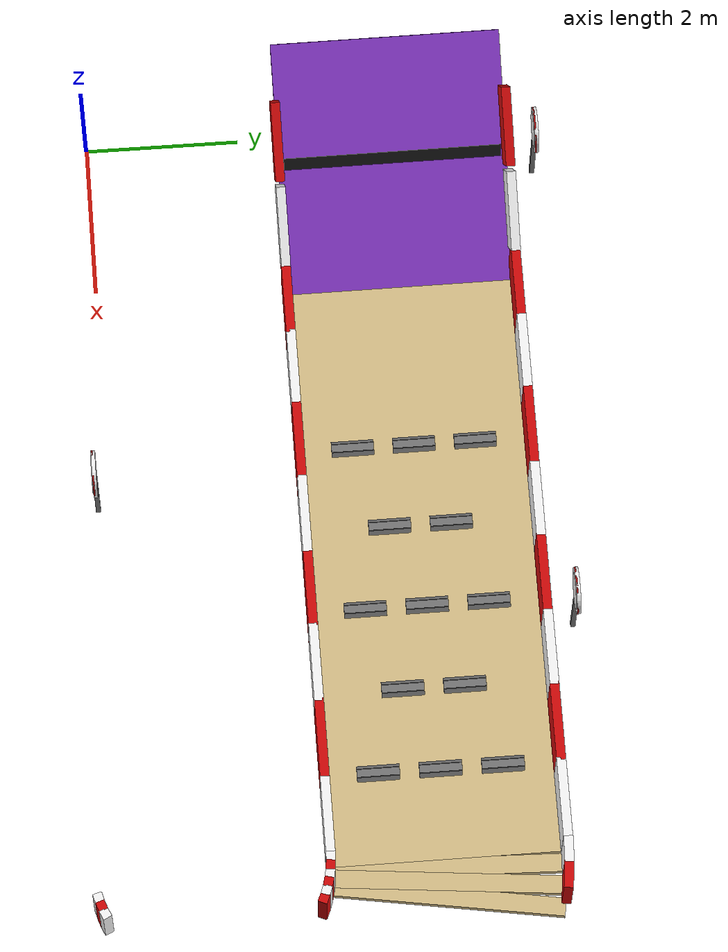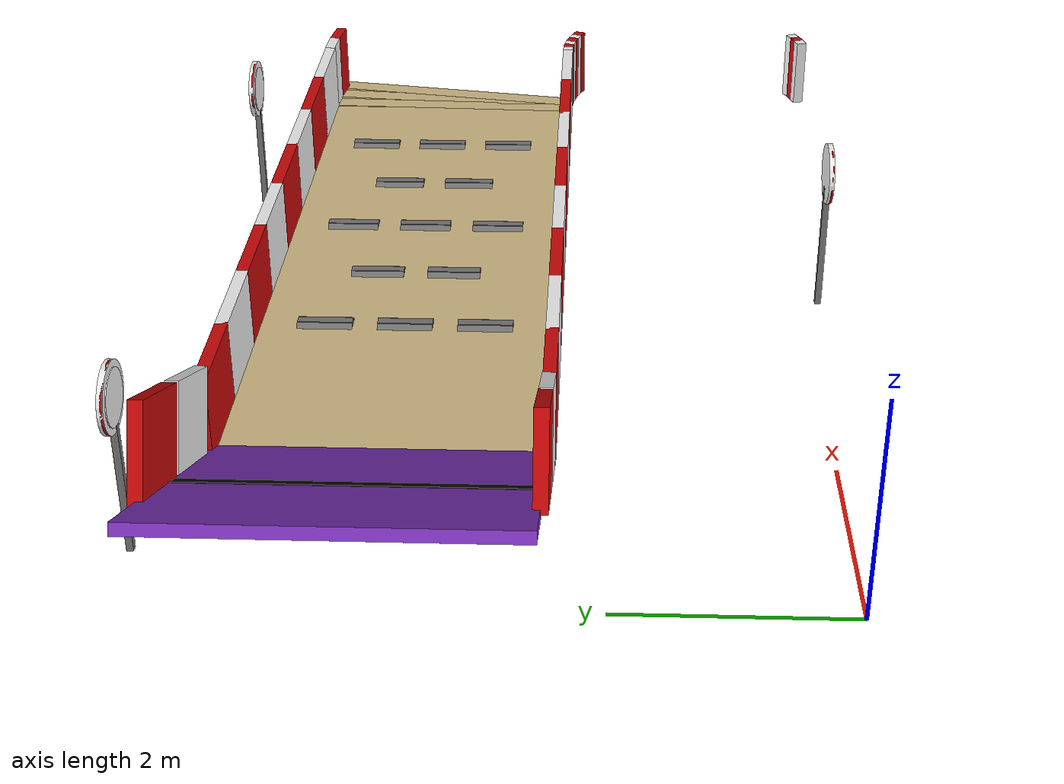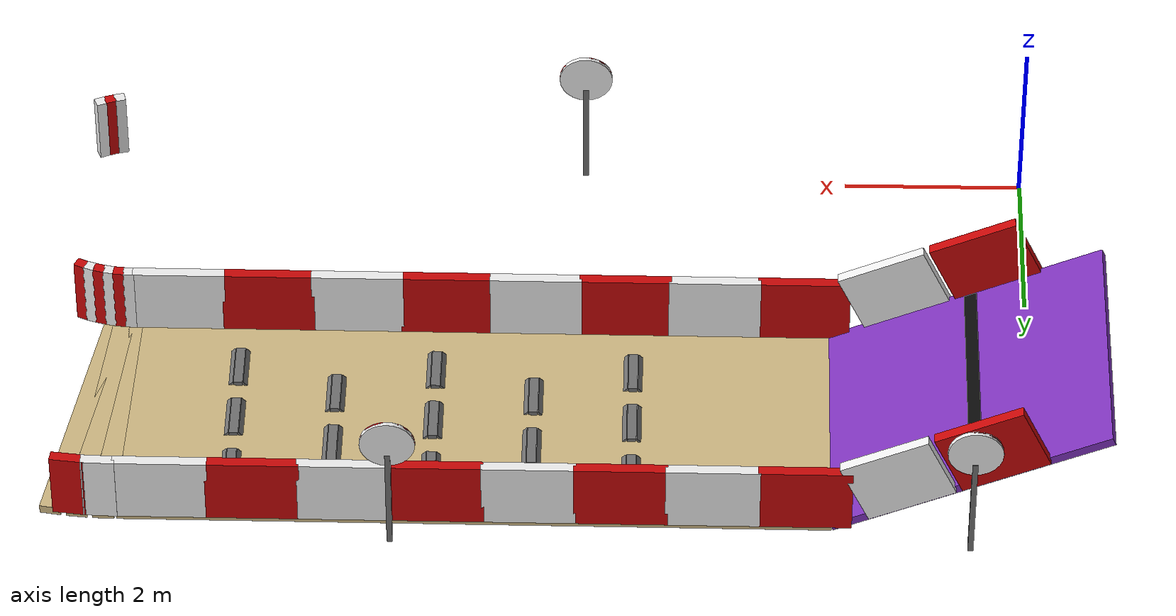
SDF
<sdf version="1.6">
 <world name="evrenos_teknofest_2026">
  <include><uri>model://sun</uri></include>
  <model name="main_course">
   <static>true</static>
   <link name="right_turn_road_45">
    <pose>10.4887 3.9599 -0.0500 0.000000 0.000000 2.977968</pose>
    <collision name="right_turn_road_45_collision">
     <geometry><box><size>0.2356 3.0000 0.1000</size></box></geometry>
    </collision>
    <visual name="right_turn_road_45_visual">
     <geometry><box><size>0.2356 3.0000 0.1000</size></box></geometry>
     <material><ambient>0.82 0.73 0.52 1</ambient><diffuse>0.82 0.73 0.52 1</diffuse></material>
    </visual>
   </link>
   <link name="right_turn_road_46">
    <pose>10.2941 3.9856 -0.0500 0.000000 0.000000 3.043418</pose>
    <collision name="right_turn_road_46_collision">
     <geometry><box><size>0.2356 3.0000 0.1000</size></box></geometry>
    </collision>
    <visual name="right_turn_road_46_visual">
     <geometry><box><size>0.2356 3.0000 0.1000</size></box></geometry>
     <material><ambient>0.82 0.73 0.52 1</ambient><diffuse>0.82 0.73 0.52 1</diffuse></material>
    </visual>
   </link>
   <link name="right_turn_road_47">
    <pose>10.0982 3.9984 -0.0500 0.000000 0.000000 3.108868</pose>
    <collision name="right_turn_road_47_collision">
     <geometry><box><size>0.2356 3.0000 0.1000</size></box></geometry>
    </collision>
    <visual name="right_turn_road_47_visual">
     <geometry><box><size>0.2356 3.0000 0.1000</size></box></geometry>
     <material><ambient>0.82 0.73 0.52 1</ambient><diffuse>0.82 0.73 0.52 1</diffuse></material>
    </visual>
   </link>
   <link name="top_rough_base_0">
    <pose>6.1000 4.0000 -0.0500 0.000000 0.000000 0.000000</pose>
    <collision name="top_rough_base_0_collision">
     <geometry><box><size>7.8000 3.0000 0.1000</size></box></geometry>
    </collision>
    <visual name="top_rough_base_0_visual">
     <geometry><box><size>7.8000 3.0000 0.1000</size></box></geometry>
     <material><ambient>0.82 0.73 0.52 1</ambient><diffuse>0.82 0.73 0.52 1</diffuse></material>
    </visual>
   </link>
   <link name="bump_0_up">
    <pose>8.7250 3.2000 0.0125 0.000000 -0.785398 0.000000</pose>
    <collision name="bump_0_up_collision">
     <geometry><box><size>0.0707 0.5500 0.0250</size></box></geometry>
    </collision>
    <visual name="bump_0_up_visual">
     <geometry><box><size>0.0707 0.5500 0.0250</size></box></geometry>
     <material><ambient>0.45 0.45 0.45 1</ambient><diffuse>0.45 0.45 0.45 1</diffuse></material>
    </visual>
   </link>
   <link name="bump_0_top">
    <pose>8.8000 3.2000 0.0250 0.000000 0.000000 0.000000</pose>
    <collision name="bump_0_top_collision">
     <geometry><box><size>0.1000 0.5500 0.0500</size></box></geometry>
    </collision>
    <visual name="bump_0_top_visual">
     <geometry><box><size>0.1000 0.5500 0.0500</size></box></geometry>
     <material><ambient>0.45 0.45 0.45 1</ambient><diffuse>0.45 0.45 0.45 1</diffuse></material>
    </visual>
   </link>
   <link name="bump_0_down">
    <pose>8.8750 3.2000 0.0125 0.000000 0.785398 0.000000</pose>
    <collision name="bump_0_down_collision">
     <geometry><box><size>0.0707 0.5500 0.0250</size></box></geometry>
    </collision>
    <visual name="bump_0_down_visual">
     <geometry><box><size>0.0707 0.5500 0.0250</size></box></geometry>
     <material><ambient>0.45 0.45 0.45 1</ambient><diffuse>0.45 0.45 0.45 1</diffuse></material>
    </visual>
   </link>
   <link name="bump_1_up">
    <pose>8.7250 4.0000 0.0125 0.000000 -0.785398 0.000000</pose>
    <collision name="bump_1_up_collision">
     <geometry><box><size>0.0707 0.5500 0.0250</size></box></geometry>
    </collision>
    <visual name="bump_1_up_visual">
     <geometry><box><size>0.0707 0.5500 0.0250</size></box></geometry>
     <material><ambient>0.45 0.45 0.45 1</ambient><diffuse>0.45 0.45 0.45 1</diffuse></material>
    </visual>
   </link>
   <link name="bump_1_top">
    <pose>8.8000 4.0000 0.0250 0.000000 0.000000 0.000000</pose>
    <collision name="bump_1_top_collision">
     <geometry><box><size>0.1000 0.5500 0.0500</size></box></geometry>
    </collision>
    <visual name="bump_1_top_visual">
     <geometry><box><size>0.1000 0.5500 0.0500</size></box></geometry>
     <material><ambient>0.45 0.45 0.45 1</ambient><diffuse>0.45 0.45 0.45 1</diffuse></material>
    </visual>
   </link>
   <link name="bump_1_down">
    <pose>8.8750 4.0000 0.0125 0.000000 0.785398 0.000000</pose>
    <collision name="bump_1_down_collision">
     <geometry><box><size>0.0707 0.5500 0.0250</size></box></geometry>
    </collision>
    <visual name="bump_1_down_visual">
     <geometry><box><size>0.0707 0.5500 0.0250</size></box></geometry>
     <material><ambient>0.45 0.45 0.45 1</ambient><diffuse>0.45 0.45 0.45 1</diffuse></material>
    </visual>
   </link>
   <link name="bump_2_up">
    <pose>8.7250 4.8000 0.0125 0.000000 -0.785398 0.000000</pose>
    <collision name="bump_2_up_collision">
     <geometry><box><size>0.0707 0.5500 0.0250</size></box></geometry>
    </collision>
    <visual name="bump_2_up_visual">
     <geometry><box><size>0.0707 0.5500 0.0250</size></box></geometry>
     <material><ambient>0.45 0.45 0.45 1</ambient><diffuse>0.45 0.45 0.45 1</diffuse></material>
    </visual>
   </link>
   <link name="bump_2_top">
    <pose>8.8000 4.8000 0.0250 0.000000 0.000000 0.000000</pose>
    <collision name="bump_2_top_collision">
     <geometry><box><size>0.1000 0.5500 0.0500</size></box></geometry>
    </collision>
    <visual name="bump_2_top_visual">
     <geometry><box><size>0.1000 0.5500 0.0500</size></box></geometry>
     <material><ambient>0.45 0.45 0.45 1</ambient><diffuse>0.45 0.45 0.45 1</diffuse></material>
    </visual>
   </link>
   <link name="bump_2_down">
    <pose>8.8750 4.8000 0.0125 0.000000 0.785398 0.000000</pose>
    <collision name="bump_2_down_collision">
     <geometry><box><size>0.0707 0.5500 0.0250</size></box></geometry>
    </collision>
    <visual name="bump_2_down_visual">
     <geometry><box><size>0.0707 0.5500 0.0250</size></box></geometry>
     <material><ambient>0.45 0.45 0.45 1</ambient><diffuse>0.45 0.45 0.45 1</diffuse></material>
    </visual>
   </link>
   <link name="bump_3_up">
    <pose>7.6250 3.6000 0.0125 0.000000 -0.785398 0.000000</pose>
    <collision name="bump_3_up_collision">
     <geometry><box><size>0.0707 0.5500 0.0250</size></box></geometry>
    </collision>
    <visual name="bump_3_up_visual">
     <geometry><box><size>0.0707 0.5500 0.0250</size></box></geometry>
     <material><ambient>0.45 0.45 0.45 1</ambient><diffuse>0.45 0.45 0.45 1</diffuse></material>
    </visual>
   </link>
   <link name="bump_3_top">
    <pose>7.7000 3.6000 0.0250 0.000000 0.000000 0.000000</pose>
    <collision name="bump_3_top_collision">
     <geometry><box><size>0.1000 0.5500 0.0500</size></box></geometry>
    </collision>
    <visual name="bump_3_top_visual">
     <geometry><box><size>0.1000 0.5500 0.0500</size></box></geometry>
     <material><ambient>0.45 0.45 0.45 1</ambient><diffuse>0.45 0.45 0.45 1</diffuse></material>
    </visual>
   </link>
   <link name="bump_3_down">
    <pose>7.7750 3.6000 0.0125 0.000000 0.785398 0.000000</pose>
    <collision name="bump_3_down_collision">
     <geometry><box><size>0.0707 0.5500 0.0250</size></box></geometry>
    </collision>
    <visual name="bump_3_down_visual">
     <geometry><box><size>0.0707 0.5500 0.0250</size></box></geometry>
     <material><ambient>0.45 0.45 0.45 1</ambient><diffuse>0.45 0.45 0.45 1</diffuse></material>
    </visual>
   </link>
   <link name="bump_4_up">
    <pose>7.6250 4.4000 0.0125 0.000000 -0.785398 0.000000</pose>
    <collision name="bump_4_up_collision">
     <geometry><box><size>0.0707 0.5500 0.0250</size></box></geometry>
    </collision>
    <visual name="bump_4_up_visual">
     <geometry><box><size>0.0707 0.5500 0.0250</size></box></geometry>
     <material><ambient>0.45 0.45 0.45 1</ambient><diffuse>0.45 0.45 0.45 1</diffuse></material>
    </visual>
   </link>
   <link name="bump_4_top">
    <pose>7.7000 4.4000 0.0250 0.000000 0.000000 0.000000</pose>
    <collision name="bump_4_top_collision">
     <geometry><box><size>0.1000 0.5500 0.0500</size></box></geometry>
    </collision>
    <visual name="bump_4_top_visual">
     <geometry><box><size>0.1000 0.5500 0.0500</size></box></geometry>
     <material><ambient>0.45 0.45 0.45 1</ambient><diffuse>0.45 0.45 0.45 1</diffuse></material>
    </visual>
   </link>
   <link name="bump_4_down">
    <pose>7.7750 4.4000 0.0125 0.000000 0.785398 0.000000</pose>
    <collision name="bump_4_down_collision">
     <geometry><box><size>0.0707 0.5500 0.0250</size></box></geometry>
    </collision>
    <visual name="bump_4_down_visual">
     <geometry><box><size>0.0707 0.5500 0.0250</size></box></geometry>
     <material><ambient>0.45 0.45 0.45 1</ambient><diffuse>0.45 0.45 0.45 1</diffuse></material>
    </visual>
   </link>
   <link name="bump_5_up">
    <pose>6.5250 3.2000 0.0125 0.000000 -0.785398 0.000000</pose>
    <collision name="bump_5_up_collision">
     <geometry><box><size>0.0707 0.5500 0.0250</size></box></geometry>
    </collision>
    <visual name="bump_5_up_visual">
     <geometry><box><size>0.0707 0.5500 0.0250</size></box></geometry>
     <material><ambient>0.45 0.45 0.45 1</ambient><diffuse>0.45 0.45 0.45 1</diffuse></material>
    </visual>
   </link>
   <link name="bump_5_top">
    <pose>6.6000 3.2000 0.0250 0.000000 0.000000 0.000000</pose>
    <collision name="bump_5_top_collision">
     <geometry><box><size>0.1000 0.5500 0.0500</size></box></geometry>
    </collision>
    <visual name="bump_5_top_visual">
     <geometry><box><size>0.1000 0.5500 0.0500</size></box></geometry>
     <material><ambient>0.45 0.45 0.45 1</ambient><diffuse>0.45 0.45 0.45 1</diffuse></material>
    </visual>
   </link>
   <link name="bump_5_down">
    <pose>6.6750 3.2000 0.0125 0.000000 0.785398 0.000000</pose>
    <collision name="bump_5_down_collision">
     <geometry><box><size>0.0707 0.5500 0.0250</size></box></geometry>
    </collision>
    <visual name="bump_5_down_visual">
     <geometry><box><size>0.0707 0.5500 0.0250</size></box></geometry>
     <material><ambient>0.45 0.45 0.45 1</ambient><diffuse>0.45 0.45 0.45 1</diffuse></material>
    </visual>
   </link>
   <link name="bump_6_up">
    <pose>6.5250 4.0000 0.0125 0.000000 -0.785398 0.000000</pose>
    <collision name="bump_6_up_collision">
     <geometry><box><size>0.0707 0.5500 0.0250</size></box></geometry>
    </collision>
    <visual name="bump_6_up_visual">
     <geometry><box><size>0.0707 0.5500 0.0250</size></box></geometry>
     <material><ambient>0.45 0.45 0.45 1</ambient><diffuse>0.45 0.45 0.45 1</diffuse></material>
    </visual>
   </link>
   <link name="bump_6_top">
    <pose>6.6000 4.0000 0.0250 0.000000 0.000000 0.000000</pose>
    <collision name="bump_6_top_collision">
     <geometry><box><size>0.1000 0.5500 0.0500</size></box></geometry>
    </collision>
    <visual name="bump_6_top_visual">
     <geometry><box><size>0.1000 0.5500 0.0500</size></box></geometry>
     <material><ambient>0.45 0.45 0.45 1</ambient><diffuse>0.45 0.45 0.45 1</diffuse></material>
    </visual>
   </link>
   <link name="bump_6_down">
    <pose>6.6750 4.0000 0.0125 0.000000 0.785398 0.000000</pose>
    <collision name="bump_6_down_collision">
     <geometry><box><size>0.0707 0.5500 0.0250</size></box></geometry>
    </collision>
    <visual name="bump_6_down_visual">
     <geometry><box><size>0.0707 0.5500 0.0250</size></box></geometry>
     <material><ambient>0.45 0.45 0.45 1</ambient><diffuse>0.45 0.45 0.45 1</diffuse></material>
    </visual>
   </link>
   <link name="bump_7_up">
    <pose>6.5250 4.8000 0.0125 0.000000 -0.785398 0.000000</pose>
    <collision name="bump_7_up_collision">
     <geometry><box><size>0.0707 0.5500 0.0250</size></box></geometry>
    </collision>
    <visual name="bump_7_up_visual">
     <geometry><box><size>0.0707 0.5500 0.0250</size></box></geometry>
     <material><ambient>0.45 0.45 0.45 1</ambient><diffuse>0.45 0.45 0.45 1</diffuse></material>
    </visual>
   </link>
   <link name="bump_7_top">
    <pose>6.6000 4.8000 0.0250 0.000000 0.000000 0.000000</pose>
    <collision name="bump_7_top_collision">
     <geometry><box><size>0.1000 0.5500 0.0500</size></box></geometry>
    </collision>
    <visual name="bump_7_top_visual">
     <geometry><box><size>0.1000 0.5500 0.0500</size></box></geometry>
     <material><ambient>0.45 0.45 0.45 1</ambient><diffuse>0.45 0.45 0.45 1</diffuse></material>
    </visual>
   </link>
   <link name="bump_7_down">
    <pose>6.6750 4.8000 0.0125 0.000000 0.785398 0.000000</pose>
    <collision name="bump_7_down_collision">
     <geometry><box><size>0.0707 0.5500 0.0250</size></box></geometry>
    </collision>
    <visual name="bump_7_down_visual">
     <geometry><box><size>0.0707 0.5500 0.0250</size></box></geometry>
     <material><ambient>0.45 0.45 0.45 1</ambient><diffuse>0.45 0.45 0.45 1</diffuse></material>
    </visual>
   </link>
   <link name="bump_8_up">
    <pose>5.4250 3.6000 0.0125 0.000000 -0.785398 0.000000</pose>
    <collision name="bump_8_up_collision">
     <geometry><box><size>0.0707 0.5500 0.0250</size></box></geometry>
    </collision>
    <visual name="bump_8_up_visual">
     <geometry><box><size>0.0707 0.5500 0.0250</size></box></geometry>
     <material><ambient>0.45 0.45 0.45 1</ambient><diffuse>0.45 0.45 0.45 1</diffuse></material>
    </visual>
   </link>
   <link name="bump_8_top">
    <pose>5.5000 3.6000 0.0250 0.000000 0.000000 0.000000</pose>
    <collision name="bump_8_top_collision">
     <geometry><box><size>0.1000 0.5500 0.0500</size></box></geometry>
    </collision>
    <visual name="bump_8_top_visual">
     <geometry><box><size>0.1000 0.5500 0.0500</size></box></geometry>
     <material><ambient>0.45 0.45 0.45 1</ambient><diffuse>0.45 0.45 0.45 1</diffuse></material>
    </visual>
   </link>
   <link name="bump_8_down">
    <pose>5.5750 3.6000 0.0125 0.000000 0.785398 0.000000</pose>
    <collision name="bump_8_down_collision">
     <geometry><box><size>0.0707 0.5500 0.0250</size></box></geometry>
    </collision>
    <visual name="bump_8_down_visual">
     <geometry><box><size>0.0707 0.5500 0.0250</size></box></geometry>
     <material><ambient>0.45 0.45 0.45 1</ambient><diffuse>0.45 0.45 0.45 1</diffuse></material>
    </visual>
   </link>
   <link name="bump_9_up">
    <pose>5.4250 4.4000 0.0125 0.000000 -0.785398 0.000000</pose>
    <collision name="bump_9_up_collision">
     <geometry><box><size>0.0707 0.5500 0.0250</size></box></geometry>
    </collision>
    <visual name="bump_9_up_visual">
     <geometry><box><size>0.0707 0.5500 0.0250</size></box></geometry>
     <material><ambient>0.45 0.45 0.45 1</ambient><diffuse>0.45 0.45 0.45 1</diffuse></material>
    </visual>
   </link>
   <link name="bump_9_top">
    <pose>5.5000 4.4000 0.0250 0.000000 0.000000 0.000000</pose>
    <collision name="bump_9_top_collision">
     <geometry><box><size>0.1000 0.5500 0.0500</size></box></geometry>
    </collision>
    <visual name="bump_9_top_visual">
     <geometry><box><size>0.1000 0.5500 0.0500</size></box></geometry>
     <material><ambient>0.45 0.45 0.45 1</ambient><diffuse>0.45 0.45 0.45 1</diffuse></material>
    </visual>
   </link>
   <link name="bump_9_down">
    <pose>5.5750 4.4000 0.0125 0.000000 0.785398 0.000000</pose>
    <collision name="bump_9_down_collision">
     <geometry><box><size>0.0707 0.5500 0.0250</size></box></geometry>
    </collision>
    <visual name="bump_9_down_visual">
     <geometry><box><size>0.0707 0.5500 0.0250</size></box></geometry>
     <material><ambient>0.45 0.45 0.45 1</ambient><diffuse>0.45 0.45 0.45 1</diffuse></material>
    </visual>
   </link>
   <link name="bump_10_up">
    <pose>4.3250 3.2000 0.0125 0.000000 -0.785398 0.000000</pose>
    <collision name="bump_10_up_collision">
     <geometry><box><size>0.0707 0.5500 0.0250</size></box></geometry>
    </collision>
    <visual name="bump_10_up_visual">
     <geometry><box><size>0.0707 0.5500 0.0250</size></box></geometry>
     <material><ambient>0.45 0.45 0.45 1</ambient><diffuse>0.45 0.45 0.45 1</diffuse></material>
    </visual>
   </link>
   <link name="bump_10_top">
    <pose>4.4000 3.2000 0.0250 0.000000 0.000000 0.000000</pose>
    <collision name="bump_10_top_collision">
     <geometry><box><size>0.1000 0.5500 0.0500</size></box></geometry>
    </collision>
    <visual name="bump_10_top_visual">
     <geometry><box><size>0.1000 0.5500 0.0500</size></box></geometry>
     <material><ambient>0.45 0.45 0.45 1</ambient><diffuse>0.45 0.45 0.45 1</diffuse></material>
    </visual>
   </link>
   <link name="bump_10_down">
    <pose>4.4750 3.2000 0.0125 0.000000 0.785398 0.000000</pose>
    <collision name="bump_10_down_collision">
     <geometry><box><size>0.0707 0.5500 0.0250</size></box></geometry>
    </collision>
    <visual name="bump_10_down_visual">
     <geometry><box><size>0.0707 0.5500 0.0250</size></box></geometry>
     <material><ambient>0.45 0.45 0.45 1</ambient><diffuse>0.45 0.45 0.45 1</diffuse></material>
    </visual>
   </link>
   <link name="bump_11_up">
    <pose>4.3250 4.0000 0.0125 0.000000 -0.785398 0.000000</pose>
    <collision name="bump_11_up_collision">
     <geometry><box><size>0.0707 0.5500 0.0250</size></box></geometry>
    </collision>
    <visual name="bump_11_up_visual">
     <geometry><box><size>0.0707 0.5500 0.0250</size></box></geometry>
     <material><ambient>0.45 0.45 0.45 1</ambient><diffuse>0.45 0.45 0.45 1</diffuse></material>
    </visual>
   </link>
   <link name="bump_11_top">
    <pose>4.4000 4.0000 0.0250 0.000000 0.000000 0.000000</pose>
    <collision name="bump_11_top_collision">
     <geometry><box><size>0.1000 0.5500 0.0500</size></box></geometry>
    </collision>
    <visual name="bump_11_top_visual">
     <geometry><box><size>0.1000 0.5500 0.0500</size></box></geometry>
     <material><ambient>0.45 0.45 0.45 1</ambient><diffuse>0.45 0.45 0.45 1</diffuse></material>
    </visual>
   </link>
   <link name="bump_11_down">
    <pose>4.4750 4.0000 0.0125 0.000000 0.785398 0.000000</pose>
    <collision name="bump_11_down_collision">
     <geometry><box><size>0.0707 0.5500 0.0250</size></box></geometry>
    </collision>
    <visual name="bump_11_down_visual">
     <geometry><box><size>0.0707 0.5500 0.0250</size></box></geometry>
     <material><ambient>0.45 0.45 0.45 1</ambient><diffuse>0.45 0.45 0.45 1</diffuse></material>
    </visual>
   </link>
   <link name="bump_12_up">
    <pose>4.3250 4.8000 0.0125 0.000000 -0.785398 0.000000</pose>
    <collision name="bump_12_up_collision">
     <geometry><box><size>0.0707 0.5500 0.0250</size></box></geometry>
    </collision>
    <visual name="bump_12_up_visual">
     <geometry><box><size>0.0707 0.5500 0.0250</size></box></geometry>
     <material><ambient>0.45 0.45 0.45 1</ambient><diffuse>0.45 0.45 0.45 1</diffuse></material>
    </visual>
   </link>
   <link name="bump_12_top">
    <pose>4.4000 4.8000 0.0250 0.000000 0.000000 0.000000</pose>
    <collision name="bump_12_top_collision">
     <geometry><box><size>0.1000 0.5500 0.0500</size></box></geometry>
    </collision>
    <visual name="bump_12_top_visual">
     <geometry><box><size>0.1000 0.5500 0.0500</size></box></geometry>
     <material><ambient>0.45 0.45 0.45 1</ambient><diffuse>0.45 0.45 0.45 1</diffuse></material>
    </visual>
   </link>
   <link name="bump_12_down">
    <pose>4.4750 4.8000 0.0125 0.000000 0.785398 0.000000</pose>
    <collision name="bump_12_down_collision">
     <geometry><box><size>0.0707 0.5500 0.0250</size></box></geometry>
    </collision>
    <visual name="bump_12_down_visual">
     <geometry><box><size>0.0707 0.5500 0.0250</size></box></geometry>
     <material><ambient>0.45 0.45 0.45 1</ambient><diffuse>0.45 0.45 0.45 1</diffuse></material>
    </visual>
   </link>
   <link name="steep_up">
    <pose>0.7000 4.0000 0.6336 0.000000 0.427606 0.000000</pose>
    <collision name="steep_up_collision">
     <geometry><box><size>3.2968 3.0000 0.1000</size></box></geometry>
    </collision>
    <visual name="steep_up_visual">
     <geometry><box><size>3.2968 3.0000 0.1000</size></box></geometry>
     <material><ambient>0.5 0.2 0.75 1</ambient><diffuse>0.5 0.2 0.75 1</diffuse></material>
    </visual>
   </link>
   <link name="stop_strip_up">
    <pose>0.6500 4.0000 0.7036 0.000000 0.427606 0.000000</pose>
    <visual name="stop_strip_up_visual">
     <geometry><box><size>0.1500 2.8500 0.0300</size></box></geometry>
     <material><ambient>0.04 0.04 0.04 1</ambient><diffuse>0.04 0.04 0.04 1</diffuse></material>
    </visual>
   </link>
   <link name="right_turn_bar_0_3">
    <pose>10.3882 -0.4489 0.4000 0.000000 0.000000 0.261799</pose>
    <collision name="right_turn_bar_0_3_collision">
     <geometry><box><size>0.1234 0.1200 0.8000</size></box></geometry>
    </collision>
    <visual name="right_turn_bar_0_3_visual">
     <geometry><box><size>0.1234 0.1200 0.8000</size></box></geometry>
     <material><ambient>0.95 0.95 0.95 1</ambient><diffuse>0.95 0.95 0.95 1</diffuse></material>
    </visual>
   </link>
   <link name="right_turn_bar_0_4">
    <pose>10.4954 -0.4158 0.4000 0.000000 0.000000 0.336599</pose>
    <collision name="right_turn_bar_0_4_collision">
     <geometry><box><size>0.1234 0.1200 0.8000</size></box></geometry>
    </collision>
    <visual name="right_turn_bar_0_4_visual">
     <geometry><box><size>0.1234 0.1200 0.8000</size></box></geometry>
     <material><ambient>0.8 0.03 0.03 1</ambient><diffuse>0.8 0.03 0.03 1</diffuse></material>
    </visual>
   </link>
   <link name="right_turn_bar_0_5">
    <pose>10.5998 -0.3748 0.4000 0.000000 0.000000 0.411399</pose>
    <collision name="right_turn_bar_0_5_collision">
     <geometry><box><size>0.1234 0.1200 0.8000</size></box></geometry>
    </collision>
    <visual name="right_turn_bar_0_5_visual">
     <geometry><box><size>0.1234 0.1200 0.8000</size></box></geometry>
     <material><ambient>0.95 0.95 0.95 1</ambient><diffuse>0.95 0.95 0.95 1</diffuse></material>
    </visual>
   </link>
   <link name="right_turn_bar_0_36">
    <pose>10.5998 2.3748 0.4000 0.000000 0.000000 2.730194</pose>
    <collision name="right_turn_bar_0_36_collision">
     <geometry><box><size>0.1234 0.1200 0.8000</size></box></geometry>
    </collision>
    <visual name="right_turn_bar_0_36_visual">
     <geometry><box><size>0.1234 0.1200 0.8000</size></box></geometry>
     <material><ambient>0.8 0.03 0.03 1</ambient><diffuse>0.8 0.03 0.03 1</diffuse></material>
    </visual>
   </link>
   <link name="right_turn_bar_0_37">
    <pose>10.4954 2.4158 0.4000 0.000000 0.000000 2.804993</pose>
    <collision name="right_turn_bar_0_37_collision">
     <geometry><box><size>0.1234 0.1200 0.8000</size></box></geometry>
    </collision>
    <visual name="right_turn_bar_0_37_visual">
     <geometry><box><size>0.1234 0.1200 0.8000</size></box></geometry>
     <material><ambient>0.95 0.95 0.95 1</ambient><diffuse>0.95 0.95 0.95 1</diffuse></material>
    </visual>
   </link>
   <link name="right_turn_bar_0_38">
    <pose>10.3882 2.4489 0.4000 0.000000 0.000000 2.879793</pose>
    <collision name="right_turn_bar_0_38_collision">
     <geometry><box><size>0.1234 0.1200 0.8000</size></box></geometry>
    </collision>
    <visual name="right_turn_bar_0_38_visual">
     <geometry><box><size>0.1234 0.1200 0.8000</size></box></geometry>
     <material><ambient>0.8 0.03 0.03 1</ambient><diffuse>0.8 0.03 0.03 1</diffuse></material>
    </visual>
   </link>
   <link name="right_turn_bar_0_39">
    <pose>10.2789 2.4738 0.4000 0.000000 0.000000 2.954593</pose>
    <collision name="right_turn_bar_0_39_collision">
     <geometry><box><size>0.1234 0.1200 0.8000</size></box></geometry>
    </collision>
    <visual name="right_turn_bar_0_39_visual">
     <geometry><box><size>0.1234 0.1200 0.8000</size></box></geometry>
     <material><ambient>0.95 0.95 0.95 1</ambient><diffuse>0.95 0.95 0.95 1</diffuse></material>
    </visual>
   </link>
   <link name="right_turn_bar_0_40">
    <pose>10.1679 2.4906 0.4000 0.000000 0.000000 3.029393</pose>
    <collision name="right_turn_bar_0_40_collision">
     <geometry><box><size>0.1234 0.1200 0.8000</size></box></geometry>
    </collision>
    <visual name="right_turn_bar_0_40_visual">
     <geometry><box><size>0.1234 0.1200 0.8000</size></box></geometry>
     <material><ambient>0.8 0.03 0.03 1</ambient><diffuse>0.8 0.03 0.03 1</diffuse></material>
    </visual>
   </link>
   <link name="right_turn_bar_0_41">
    <pose>10.0561 2.4990 0.4000 0.000000 0.000000 3.104193</pose>
    <collision name="right_turn_bar_0_41_collision">
     <geometry><box><size>0.1234 0.1200 0.8000</size></box></geometry>
    </collision>
    <visual name="right_turn_bar_0_41_visual">
     <geometry><box><size>0.1234 0.1200 0.8000</size></box></geometry>
     <material><ambient>0.95 0.95 0.95 1</ambient><diffuse>0.95 0.95 0.95 1</diffuse></material>
    </visual>
   </link>
   <link name="right_turn_bar_1_40">
    <pose>10.5038 5.4717 0.4000 0.000000 0.000000 3.029393</pose>
    <collision name="right_turn_bar_1_40_collision">
     <geometry><box><size>0.3703 0.1200 0.8000</size></box></geometry>
    </collision>
    <visual name="right_turn_bar_1_40_visual">
     <geometry><box><size>0.3703 0.1200 0.8000</size></box></geometry>
     <material><ambient>0.8 0.03 0.03 1</ambient><diffuse>0.8 0.03 0.03 1</diffuse></material>
    </visual>
   </link>
   <link name="right_turn_bar_1_41">
    <pose>10.1683 5.4969 0.4000 0.000000 0.000000 3.104193</pose>
    <collision name="right_turn_bar_1_41_collision">
     <geometry><box><size>0.3703 0.1200 0.8000</size></box></geometry>
    </collision>
    <visual name="right_turn_bar_1_41_visual">
     <geometry><box><size>0.3703 0.1200 0.8000</size></box></geometry>
     <material><ambient>0.95 0.95 0.95 1</ambient><diffuse>0.95 0.95 0.95 1</diffuse></material>
    </visual>
   </link>
   <link name="top_bar_-1_10">
    <pose>0.5000 2.5000 1.1747 0.000000 0.427606 0.000000</pose>
    <collision name="top_bar_-1_10_collision">
     <geometry><box><size>1.0300 0.1200 0.8000</size></box></geometry>
    </collision>
    <visual name="top_bar_-1_10_visual">
     <geometry><box><size>1.0300 0.1200 0.8000</size></box></geometry>
     <material><ambient>0.8 0.03 0.03 1</ambient><diffuse>0.8 0.03 0.03 1</diffuse></material>
    </visual>
   </link>
   <link name="top_bar_-1_11">
    <pose>1.5000 2.5000 0.7190 0.000000 0.427606 0.000000</pose>
    <collision name="top_bar_-1_11_collision">
     <geometry><box><size>1.0300 0.1200 0.8000</size></box></geometry>
    </collision>
    <visual name="top_bar_-1_11_visual">
     <geometry><box><size>1.0300 0.1200 0.8000</size></box></geometry>
     <material><ambient>0.95 0.95 0.95 1</ambient><diffuse>0.95 0.95 0.95 1</diffuse></material>
    </visual>
   </link>
   <link name="top_bar_-1_12">
    <pose>2.5000 2.5000 0.4000 0.000000 0.000000 0.000000</pose>
    <collision name="top_bar_-1_12_collision">
     <geometry><box><size>1.0300 0.1200 0.8000</size></box></geometry>
    </collision>
    <visual name="top_bar_-1_12_visual">
     <geometry><box><size>1.0300 0.1200 0.8000</size></box></geometry>
     <material><ambient>0.8 0.03 0.03 1</ambient><diffuse>0.8 0.03 0.03 1</diffuse></material>
    </visual>
   </link>
   <link name="top_bar_-1_13">
    <pose>3.5000 2.5000 0.4000 0.000000 0.000000 0.000000</pose>
    <collision name="top_bar_-1_13_collision">
     <geometry><box><size>1.0300 0.1200 0.8000</size></box></geometry>
    </collision>
    <visual name="top_bar_-1_13_visual">
     <geometry><box><size>1.0300 0.1200 0.8000</size></box></geometry>
     <material><ambient>0.95 0.95 0.95 1</ambient><diffuse>0.95 0.95 0.95 1</diffuse></material>
    </visual>
   </link>
   <link name="top_bar_-1_14">
    <pose>4.5000 2.5000 0.4000 0.000000 0.000000 0.000000</pose>
    <collision name="top_bar_-1_14_collision">
     <geometry><box><size>1.0300 0.1200 0.8000</size></box></geometry>
    </collision>
    <visual name="top_bar_-1_14_visual">
     <geometry><box><size>1.0300 0.1200 0.8000</size></box></geometry>
     <material><ambient>0.8 0.03 0.03 1</ambient><diffuse>0.8 0.03 0.03 1</diffuse></material>
    </visual>
   </link>
   <link name="top_bar_-1_15">
    <pose>5.5000 2.5000 0.4000 0.000000 0.000000 0.000000</pose>
    <collision name="top_bar_-1_15_collision">
     <geometry><box><size>1.0300 0.1200 0.8000</size></box></geometry>
    </collision>
    <visual name="top_bar_-1_15_visual">
     <geometry><box><size>1.0300 0.1200 0.8000</size></box></geometry>
     <material><ambient>0.95 0.95 0.95 1</ambient><diffuse>0.95 0.95 0.95 1</diffuse></material>
    </visual>
   </link>
   <link name="top_bar_-1_16">
    <pose>6.5000 2.5000 0.4000 0.000000 0.000000 0.000000</pose>
    <collision name="top_bar_-1_16_collision">
     <geometry><box><size>1.0300 0.1200 0.8000</size></box></geometry>
    </collision>
    <visual name="top_bar_-1_16_visual">
     <geometry><box><size>1.0300 0.1200 0.8000</size></box></geometry>
     <material><ambient>0.8 0.03 0.03 1</ambient><diffuse>0.8 0.03 0.03 1</diffuse></material>
    </visual>
   </link>
   <link name="top_bar_-1_17">
    <pose>7.5000 2.5000 0.4000 0.000000 0.000000 0.000000</pose>
    <collision name="top_bar_-1_17_collision">
     <geometry><box><size>1.0300 0.1200 0.8000</size></box></geometry>
    </collision>
    <visual name="top_bar_-1_17_visual">
     <geometry><box><size>1.0300 0.1200 0.8000</size></box></geometry>
     <material><ambient>0.95 0.95 0.95 1</ambient><diffuse>0.95 0.95 0.95 1</diffuse></material>
    </visual>
   </link>
   <link name="top_bar_-1_18">
    <pose>8.5000 2.5000 0.4000 0.000000 0.000000 0.000000</pose>
    <collision name="top_bar_-1_18_collision">
     <geometry><box><size>1.0300 0.1200 0.8000</size></box></geometry>
    </collision>
    <visual name="top_bar_-1_18_visual">
     <geometry><box><size>1.0300 0.1200 0.8000</size></box></geometry>
     <material><ambient>0.8 0.03 0.03 1</ambient><diffuse>0.8 0.03 0.03 1</diffuse></material>
    </visual>
   </link>
   <link name="top_bar_-1_19">
    <pose>9.5000 2.5000 0.4000 0.000000 0.000000 0.000000</pose>
    <collision name="top_bar_-1_19_collision">
     <geometry><box><size>1.0300 0.1200 0.8000</size></box></geometry>
    </collision>
    <visual name="top_bar_-1_19_visual">
     <geometry><box><size>1.0300 0.1200 0.8000</size></box></geometry>
     <material><ambient>0.95 0.95 0.95 1</ambient><diffuse>0.95 0.95 0.95 1</diffuse></material>
    </visual>
   </link>
   <link name="top_bar_1_10">
    <pose>0.5000 5.5000 1.1747 0.000000 0.427606 0.000000</pose>
    <collision name="top_bar_1_10_collision">
     <geometry><box><size>1.0300 0.1200 0.8000</size></box></geometry>
    </collision>
    <visual name="top_bar_1_10_visual">
     <geometry><box><size>1.0300 0.1200 0.8000</size></box></geometry>
     <material><ambient>0.8 0.03 0.03 1</ambient><diffuse>0.8 0.03 0.03 1</diffuse></material>
    </visual>
   </link>
   <link name="top_bar_1_11">
    <pose>1.5000 5.5000 0.7190 0.000000 0.427606 0.000000</pose>
    <collision name="top_bar_1_11_collision">
     <geometry><box><size>1.0300 0.1200 0.8000</size></box></geometry>
    </collision>
    <visual name="top_bar_1_11_visual">
     <geometry><box><size>1.0300 0.1200 0.8000</size></box></geometry>
     <material><ambient>0.95 0.95 0.95 1</ambient><diffuse>0.95 0.95 0.95 1</diffuse></material>
    </visual>
   </link>
   <link name="top_bar_1_12">
    <pose>2.5000 5.5000 0.4000 0.000000 0.000000 0.000000</pose>
    <collision name="top_bar_1_12_collision">
     <geometry><box><size>1.0300 0.1200 0.8000</size></box></geometry>
    </collision>
    <visual name="top_bar_1_12_visual">
     <geometry><box><size>1.0300 0.1200 0.8000</size></box></geometry>
     <material><ambient>0.8 0.03 0.03 1</ambient><diffuse>0.8 0.03 0.03 1</diffuse></material>
    </visual>
   </link>
   <link name="top_bar_1_13">
    <pose>3.5000 5.5000 0.4000 0.000000 0.000000 0.000000</pose>
    <collision name="top_bar_1_13_collision">
     <geometry><box><size>1.0300 0.1200 0.8000</size></box></geometry>
    </collision>
    <visual name="top_bar_1_13_visual">
     <geometry><box><size>1.0300 0.1200 0.8000</size></box></geometry>
     <material><ambient>0.95 0.95 0.95 1</ambient><diffuse>0.95 0.95 0.95 1</diffuse></material>
    </visual>
   </link>
   <link name="top_bar_1_14">
    <pose>4.5000 5.5000 0.4000 0.000000 0.000000 0.000000</pose>
    <collision name="top_bar_1_14_collision">
     <geometry><box><size>1.0300 0.1200 0.8000</size></box></geometry>
    </collision>
    <visual name="top_bar_1_14_visual">
     <geometry><box><size>1.0300 0.1200 0.8000</size></box></geometry>
     <material><ambient>0.8 0.03 0.03 1</ambient><diffuse>0.8 0.03 0.03 1</diffuse></material>
    </visual>
   </link>
   <link name="top_bar_1_15">
    <pose>5.5000 5.5000 0.4000 0.000000 0.000000 0.000000</pose>
    <collision name="top_bar_1_15_collision">
     <geometry><box><size>1.0300 0.1200 0.8000</size></box></geometry>
    </collision>
    <visual name="top_bar_1_15_visual">
     <geometry><box><size>1.0300 0.1200 0.8000</size></box></geometry>
     <material><ambient>0.95 0.95 0.95 1</ambient><diffuse>0.95 0.95 0.95 1</diffuse></material>
    </visual>
   </link>
   <link name="top_bar_1_16">
    <pose>6.5000 5.5000 0.4000 0.000000 0.000000 0.000000</pose>
    <collision name="top_bar_1_16_collision">
     <geometry><box><size>1.0300 0.1200 0.8000</size></box></geometry>
    </collision>
    <visual name="top_bar_1_16_visual">
     <geometry><box><size>1.0300 0.1200 0.8000</size></box></geometry>
     <material><ambient>0.8 0.03 0.03 1</ambient><diffuse>0.8 0.03 0.03 1</diffuse></material>
    </visual>
   </link>
   <link name="top_bar_1_17">
    <pose>7.5000 5.5000 0.4000 0.000000 0.000000 0.000000</pose>
    <collision name="top_bar_1_17_collision">
     <geometry><box><size>1.0300 0.1200 0.8000</size></box></geometry>
    </collision>
    <visual name="top_bar_1_17_visual">
     <geometry><box><size>1.0300 0.1200 0.8000</size></box></geometry>
     <material><ambient>0.95 0.95 0.95 1</ambient><diffuse>0.95 0.95 0.95 1</diffuse></material>
    </visual>
   </link>
   <link name="top_bar_1_18">
    <pose>8.5000 5.5000 0.4000 0.000000 0.000000 0.000000</pose>
    <collision name="top_bar_1_18_collision">
     <geometry><box><size>1.0300 0.1200 0.8000</size></box></geometry>
    </collision>
    <visual name="top_bar_1_18_visual">
     <geometry><box><size>1.0300 0.1200 0.8000</size></box></geometry>
     <material><ambient>0.8 0.03 0.03 1</ambient><diffuse>0.8 0.03 0.03 1</diffuse></material>
    </visual>
   </link>
   <link name="top_bar_1_19">
    <pose>9.5000 5.5000 0.4000 0.000000 0.000000 0.000000</pose>
    <collision name="top_bar_1_19_collision">
     <geometry><box><size>1.0300 0.1200 0.8000</size></box></geometry>
    </collision>
    <visual name="top_bar_1_19_visual">
     <geometry><box><size>1.0300 0.1200 0.8000</size></box></geometry>
     <material><ambient>0.95 0.95 0.95 1</ambient><diffuse>0.95 0.95 0.95 1</diffuse></material>
    </visual>
   </link>
   <link name="stage6_post">
    <pose>5.0000 -0.1500 0.6500 0.000000 0.000000 0.000000</pose>
    <collision name="stage6_post_collision">
     <geometry><box><size>0.0600 0.0600 1.3000</size></box></geometry>
    </collision>
    <visual name="stage6_post_visual">
     <geometry><box><size>0.0600 0.0600 1.3000</size></box></geometry>
     <material><ambient>0.45 0.45 0.45 1</ambient><diffuse>0.45 0.45 0.45 1</diffuse></material>
    </visual>
   </link>
   <link name="stage6_disc">
    <pose>5.0000 -0.1500 1.4500 1.570796 0.000000 0.000000</pose>
    <visual name="stage6_disc_visual">
     <geometry><cylinder><radius>0.3000</radius><length>0.0500</length></cylinder></geometry>
     <material><ambient>0.95 0.95 0.95 1</ambient><diffuse>0.95 0.95 0.95 1</diffuse></material>
    </visual>
   </link>
   <link name="stage6_redring">
    <pose>5.0000 -0.1620 1.4500 1.570796 0.000000 0.000000</pose>
    <visual name="stage6_redring_visual">
     <geometry><cylinder><radius>0.3000</radius><length>0.0180</length></cylinder></geometry>
     <material><ambient>0.8 0.03 0.03 1</ambient><diffuse>0.8 0.03 0.03 1</diffuse></material>
    </visual>
   </link>
   <link name="stage6_inner">
    <pose>5.0000 -0.1740 1.4500 1.570796 0.000000 0.000000</pose>
    <visual name="stage6_inner_visual">
     <geometry><cylinder><radius>0.2400</radius><length>0.0200</length></cylinder></geometry>
     <material><ambient>0.95 0.95 0.95 1</ambient><diffuse>0.95 0.95 0.95 1</diffuse></material>
    </visual>
   </link>
   <link name="stage7_post">
    <pose>7.0000 5.8500 0.6500 0.000000 0.000000 0.000000</pose>
    <collision name="stage7_post_collision">
     <geometry><box><size>0.0600 0.0600 1.3000</size></box></geometry>
    </collision>
    <visual name="stage7_post_visual">
     <geometry><box><size>0.0600 0.0600 1.3000</size></box></geometry>
     <material><ambient>0.45 0.45 0.45 1</ambient><diffuse>0.45 0.45 0.45 1</diffuse></material>
    </visual>
   </link>
   <link name="stage7_disc">
    <pose>7.0000 5.8500 1.4500 1.570796 0.000000 0.000000</pose>
    <visual name="stage7_disc_visual">
     <geometry><cylinder><radius>0.3000</radius><length>0.0500</length></cylinder></geometry>
     <material><ambient>0.95 0.95 0.95 1</ambient><diffuse>0.95 0.95 0.95 1</diffuse></material>
    </visual>
   </link>
   <link name="stage7_redring">
    <pose>7.0000 5.8380 1.4500 1.570796 0.000000 0.000000</pose>
    <visual name="stage7_redring_visual">
     <geometry><cylinder><radius>0.3000</radius><length>0.0180</length></cylinder></geometry>
     <material><ambient>0.8 0.03 0.03 1</ambient><diffuse>0.8 0.03 0.03 1</diffuse></material>
    </visual>
   </link>
   <link name="stage7_inner">
    <pose>7.0000 5.8260 1.4500 1.570796 0.000000 0.000000</pose>
    <visual name="stage7_inner_visual">
     <geometry><cylinder><radius>0.2400</radius><length>0.0200</length></cylinder></geometry>
     <material><ambient>0.95 0.95 0.95 1</ambient><diffuse>0.95 0.95 0.95 1</diffuse></material>
    </visual>
   </link>
   <link name="stage8_post">
    <pose>0.7000 5.8500 0.6500 0.000000 0.000000 0.000000</pose>
    <collision name="stage8_post_collision">
     <geometry><box><size>0.0600 0.0600 1.3000</size></box></geometry>
    </collision>
    <visual name="stage8_post_visual">
     <geometry><box><size>0.0600 0.0600 1.3000</size></box></geometry>
     <material><ambient>0.45 0.45 0.45 1</ambient><diffuse>0.45 0.45 0.45 1</diffuse></material>
    </visual>
   </link>
   <link name="stage8_disc">
    <pose>0.7000 5.8500 1.4500 1.570796 0.000000 0.000000</pose>
    <visual name="stage8_disc_visual">
     <geometry><cylinder><radius>0.3000</radius><length>0.0500</length></cylinder></geometry>
     <material><ambient>0.95 0.95 0.95 1</ambient><diffuse>0.95 0.95 0.95 1</diffuse></material>
    </visual>
   </link>
   <link name="stage8_redring">
    <pose>0.7000 5.8380 1.4500 1.570796 0.000000 0.000000</pose>
    <visual name="stage8_redring_visual">
     <geometry><cylinder><radius>0.3000</radius><length>0.0180</length></cylinder></geometry>
     <material><ambient>0.8 0.03 0.03 1</ambient><diffuse>0.8 0.03 0.03 1</diffuse></material>
    </visual>
   </link>
   <link name="stage8_inner">
    <pose>0.7000 5.8260 1.4500 1.570796 0.000000 0.000000</pose>
    <visual name="stage8_inner_visual">
     <geometry><cylinder><radius>0.2400</radius><length>0.0200</length></cylinder></geometry>
     <material><ambient>0.95 0.95 0.95 1</ambient><diffuse>0.95 0.95 0.95 1</diffuse></material>
    </visual>
   </link>
  </model>
 </world>
</sdf>
